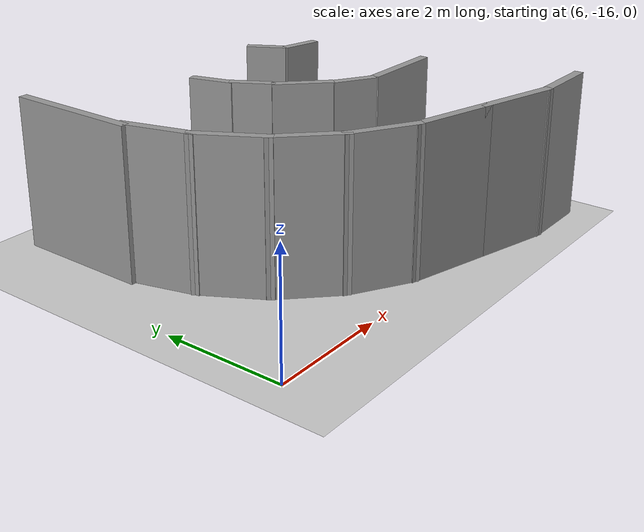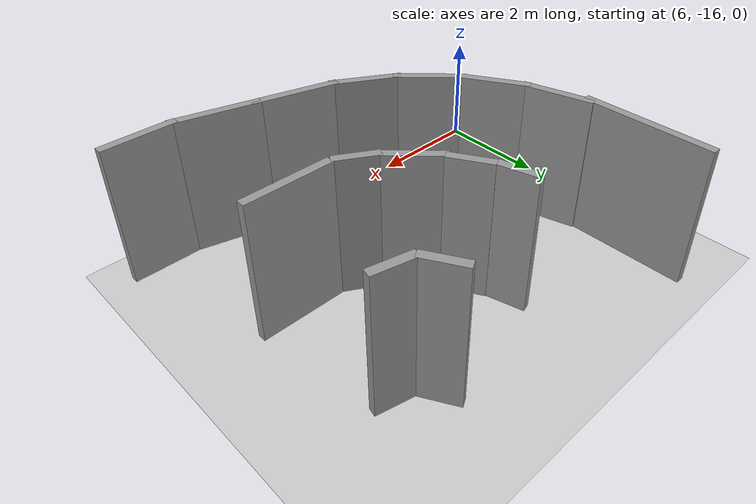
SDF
<sdf version="1.6">
 <world name="default">
  <model name="ground_plane">
   <static>1</static>
   <link name="link">
    <collision name="collision">
     <geometry><plane><normal>0 0 1</normal><size>100 100</size></plane></geometry>
     <surface><friction><ode><mu>100</mu><mu2>50</mu2></ode></friction></surface>
    </collision>
    <visual name="visual">
     <cast_shadows>0</cast_shadows>
     <geometry><plane><normal>0 0 1</normal><size>100 100</size></plane></geometry>
     <material>
      <script><uri>file://media/materials/scripts/gazebo.material</uri><name>Gazebo/Grey</name></script>
     </material>
    </visual>
   </link>
  </model>
  <model name="c-Snail_v3">
   <link name="Wall_21">
    <pose>5.25228 -5.75509 0 0 -0 0</pose>
    <visual name="Wall_21_Visual">
     <pose>0 0 1.25 0 -0 0</pose>
     <geometry><box><size>2.25 0.15 2.5</size></box></geometry>
     <material>
      <script><uri>file://media/materials/scripts/gazebo.material</uri><name>Gazebo/Grey</name></script>
      <ambient>1 1 1 1</ambient>
     </material>
     <meta><layer>0</layer></meta>
    </visual>
    <collision name="Wall_21_Collision">
     <pose>0 0 1.25 0 -0 0</pose>
     <geometry><box><size>2.25 0.15 2.5</size></box></geometry>
     <surface>
      <friction>
       <ode><mu>1</mu><mu2>1</mu2><fdir1>0 0 0</fdir1><slip1>0</slip1><slip2>0</slip2></ode>
       <torsional>
        <coefficient>1</coefficient>
        <patch_radius>0</patch_radius>
        <surface_radius>0</surface_radius>
        <use_patch_radius>1</use_patch_radius>
        <ode><slip>0</slip></ode>
       </torsional>
      </friction>
      <bounce><restitution_coefficient>0</restitution_coefficient><threshold>1e+06</threshold></bounce>
      <contact>
       <collide_without_contact>0</collide_without_contact>
       <collide_without_contact_bitmask>1</collide_without_contact_bitmask>
       <collide_bitmask>1</collide_bitmask>
       <ode>
        <soft_cfm>0</soft_cfm>
        <soft_erp>0.2</soft_erp>
        <kp>1e+13</kp>
        <kd>1</kd>
        <max_vel>0.01</max_vel>
        <min_depth>0</min_depth>
       </ode>
       <bullet>
        <split_impulse>1</split_impulse>
        <split_impulse_penetration_threshold>-0.01</split_impulse_penetration_threshold>
        <soft_cfm>0</soft_cfm>
        <soft_erp>0.2</soft_erp>
        <kp>1e+13</kp>
        <kd>1</kd>
       </bullet>
      </contact>
     </surface>
    </collision>
   </link>
   <link name="Wall_22">
    <pose>6.78859 -5.56286 0 0 -0 0.261799</pose>
    <visual name="Wall_22_Visual">
     <pose>0 0 1.25 0 -0 0</pose>
     <geometry><box><size>1.25 0.15 2.5</size></box></geometry>
     <material>
      <script><uri>file://media/materials/scripts/gazebo.material</uri><name>Gazebo/Grey</name></script>
      <ambient>1 1 1 1</ambient>
     </material>
     <meta><layer>0</layer></meta>
    </visual>
    <collision name="Wall_22_Collision">
     <pose>0 0 1.25 0 -0 0</pose>
     <geometry><box><size>1.25 0.15 2.5</size></box></geometry>
     <surface>
      <friction>
       <ode><mu>1</mu><mu2>1</mu2><fdir1>0 0 0</fdir1><slip1>0</slip1><slip2>0</slip2></ode>
       <torsional>
        <coefficient>1</coefficient>
        <patch_radius>0</patch_radius>
        <surface_radius>0</surface_radius>
        <use_patch_radius>1</use_patch_radius>
        <ode><slip>0</slip></ode>
       </torsional>
      </friction>
      <bounce><restitution_coefficient>0</restitution_coefficient><threshold>1e+06</threshold></bounce>
      <contact>
       <collide_without_contact>0</collide_without_contact>
       <collide_without_contact_bitmask>1</collide_without_contact_bitmask>
       <collide_bitmask>1</collide_bitmask>
       <ode>
        <soft_cfm>0</soft_cfm>
        <soft_erp>0.2</soft_erp>
        <kp>1e+13</kp>
        <kd>1</kd>
        <max_vel>0.01</max_vel>
        <min_depth>0</min_depth>
       </ode>
       <bullet>
        <split_impulse>1</split_impulse>
        <split_impulse_penetration_threshold>-0.01</split_impulse_penetration_threshold>
        <soft_cfm>0</soft_cfm>
        <soft_erp>0.2</soft_erp>
        <kp>1e+13</kp>
        <kd>1</kd>
       </bullet>
      </contact>
     </surface>
    </collision>
   </link>
   <link name="Wall_23">
    <pose>7.79617 -5.14551 0 0 -0 0.523599</pose>
    <visual name="Wall_23_Visual">
     <pose>0 0 1.25 0 -0 0</pose>
     <geometry><box><size>1.25 0.15 2.5</size></box></geometry>
     <material>
      <script><uri>file://media/materials/scripts/gazebo.material</uri><name>Gazebo/Grey</name></script>
      <ambient>1 1 1 1</ambient>
     </material>
     <meta><layer>0</layer></meta>
    </visual>
    <collision name="Wall_23_Collision">
     <pose>0 0 1.25 0 -0 0</pose>
     <geometry><box><size>1.25 0.15 2.5</size></box></geometry>
     <surface>
      <friction>
       <ode><mu>1</mu><mu2>1</mu2><fdir1>0 0 0</fdir1><slip1>0</slip1><slip2>0</slip2></ode>
       <torsional>
        <coefficient>1</coefficient>
        <patch_radius>0</patch_radius>
        <surface_radius>0</surface_radius>
        <use_patch_radius>1</use_patch_radius>
        <ode><slip>0</slip></ode>
       </torsional>
      </friction>
      <bounce><restitution_coefficient>0</restitution_coefficient><threshold>1e+06</threshold></bounce>
      <contact>
       <collide_without_contact>0</collide_without_contact>
       <collide_without_contact_bitmask>1</collide_without_contact_bitmask>
       <collide_bitmask>1</collide_bitmask>
       <ode>
        <soft_cfm>0</soft_cfm>
        <soft_erp>0.2</soft_erp>
        <kp>1e+13</kp>
        <kd>1</kd>
        <max_vel>0.01</max_vel>
        <min_depth>0</min_depth>
       </ode>
       <bullet>
        <split_impulse>1</split_impulse>
        <split_impulse_penetration_threshold>-0.01</split_impulse_penetration_threshold>
        <soft_cfm>0</soft_cfm>
        <soft_erp>0.2</soft_erp>
        <kp>1e+13</kp>
        <kd>1</kd>
       </bullet>
      </contact>
     </surface>
    </collision>
   </link>
   <link name="Wall_24">
    <pose>8.66139 -4.4816 0 0 -0 0.785398</pose>
    <visual name="Wall_24_Visual">
     <pose>0 0 1.25 0 -0 0</pose>
     <geometry><box><size>1.25 0.15 2.5</size></box></geometry>
     <material>
      <script><uri>file://media/materials/scripts/gazebo.material</uri><name>Gazebo/Grey</name></script>
      <ambient>1 1 1 1</ambient>
     </material>
     <meta><layer>0</layer></meta>
    </visual>
    <collision name="Wall_24_Collision">
     <pose>0 0 1.25 0 -0 0</pose>
     <geometry><box><size>1.25 0.15 2.5</size></box></geometry>
     <surface>
      <friction>
       <ode><mu>1</mu><mu2>1</mu2><fdir1>0 0 0</fdir1><slip1>0</slip1><slip2>0</slip2></ode>
       <torsional>
        <coefficient>1</coefficient>
        <patch_radius>0</patch_radius>
        <surface_radius>0</surface_radius>
        <use_patch_radius>1</use_patch_radius>
        <ode><slip>0</slip></ode>
       </torsional>
      </friction>
      <bounce><restitution_coefficient>0</restitution_coefficient><threshold>1e+06</threshold></bounce>
      <contact>
       <collide_without_contact>0</collide_without_contact>
       <collide_without_contact_bitmask>1</collide_without_contact_bitmask>
       <collide_bitmask>1</collide_bitmask>
       <ode>
        <soft_cfm>0</soft_cfm>
        <soft_erp>0.2</soft_erp>
        <kp>1e+13</kp>
        <kd>1</kd>
        <max_vel>0.01</max_vel>
        <min_depth>0</min_depth>
       </ode>
       <bullet>
        <split_impulse>1</split_impulse>
        <split_impulse_penetration_threshold>-0.01</split_impulse_penetration_threshold>
        <soft_cfm>0</soft_cfm>
        <soft_erp>0.2</soft_erp>
        <kp>1e+13</kp>
        <kd>1</kd>
       </bullet>
      </contact>
     </surface>
    </collision>
   </link>
   <link name="Wall_25">
    <pose>9.3253 -3.61638 0 0 -0 1.0472</pose>
    <visual name="Wall_25_Visual">
     <pose>0 0 1.25 0 -0 0</pose>
     <geometry><box><size>1.25 0.15 2.5</size></box></geometry>
     <material>
      <script><uri>file://media/materials/scripts/gazebo.material</uri><name>Gazebo/Grey</name></script>
      <ambient>1 1 1 1</ambient>
     </material>
     <meta><layer>0</layer></meta>
    </visual>
    <collision name="Wall_25_Collision">
     <pose>0 0 1.25 0 -0 0</pose>
     <geometry><box><size>1.25 0.15 2.5</size></box></geometry>
     <surface>
      <friction>
       <ode><mu>1</mu><mu2>1</mu2><fdir1>0 0 0</fdir1><slip1>0</slip1><slip2>0</slip2></ode>
       <torsional>
        <coefficient>1</coefficient>
        <patch_radius>0</patch_radius>
        <surface_radius>0</surface_radius>
        <use_patch_radius>1</use_patch_radius>
        <ode><slip>0</slip></ode>
       </torsional>
      </friction>
      <bounce><restitution_coefficient>0</restitution_coefficient><threshold>1e+06</threshold></bounce>
      <contact>
       <collide_without_contact>0</collide_without_contact>
       <collide_without_contact_bitmask>1</collide_without_contact_bitmask>
       <collide_bitmask>1</collide_bitmask>
       <ode>
        <soft_cfm>0</soft_cfm>
        <soft_erp>0.2</soft_erp>
        <kp>1e+13</kp>
        <kd>1</kd>
        <max_vel>0.01</max_vel>
        <min_depth>0</min_depth>
       </ode>
       <bullet>
        <split_impulse>1</split_impulse>
        <split_impulse_penetration_threshold>-0.01</split_impulse_penetration_threshold>
        <soft_cfm>0</soft_cfm>
        <soft_erp>0.2</soft_erp>
        <kp>1e+13</kp>
        <kd>1</kd>
       </bullet>
      </contact>
     </surface>
    </collision>
   </link>
   <link name="Wall_26">
    <pose>9.775 -2.48806 0 0 -0 1.309</pose>
    <visual name="Wall_26_Visual">
     <pose>0 0 1.25 0 -0 0</pose>
     <geometry><box><size>1.5 0.15 2.5</size></box></geometry>
     <material>
      <script><uri>file://media/materials/scripts/gazebo.material</uri><name>Gazebo/Grey</name></script>
      <ambient>1 1 1 1</ambient>
     </material>
     <meta><layer>0</layer></meta>
    </visual>
    <collision name="Wall_26_Collision">
     <pose>0 0 1.25 0 -0 0</pose>
     <geometry><box><size>1.5 0.15 2.5</size></box></geometry>
     <surface>
      <friction>
       <ode><mu>1</mu><mu2>1</mu2><fdir1>0 0 0</fdir1><slip1>0</slip1><slip2>0</slip2></ode>
       <torsional>
        <coefficient>1</coefficient>
        <patch_radius>0</patch_radius>
        <surface_radius>0</surface_radius>
        <use_patch_radius>1</use_patch_radius>
        <ode><slip>0</slip></ode>
       </torsional>
      </friction>
      <bounce><restitution_coefficient>0</restitution_coefficient><threshold>1e+06</threshold></bounce>
      <contact>
       <collide_without_contact>0</collide_without_contact>
       <collide_without_contact_bitmask>1</collide_without_contact_bitmask>
       <collide_bitmask>1</collide_bitmask>
       <ode>
        <soft_cfm>0</soft_cfm>
        <soft_erp>0.2</soft_erp>
        <kp>1e+13</kp>
        <kd>1</kd>
        <max_vel>0.01</max_vel>
        <min_depth>0</min_depth>
       </ode>
       <bullet>
        <split_impulse>1</split_impulse>
        <split_impulse_penetration_threshold>-0.01</split_impulse_penetration_threshold>
        <soft_cfm>0</soft_cfm>
        <soft_erp>0.2</soft_erp>
        <kp>1e+13</kp>
        <kd>1</kd>
       </bullet>
      </contact>
     </surface>
    </collision>
   </link>
   <link name="Wall_27">
    <pose>10.1244 -1.18406 0 0 -0 1.309</pose>
    <visual name="Wall_27_Visual">
     <pose>0 0 1.25 0 -0 0</pose>
     <geometry><box><size>1.5 0.15 2.5</size></box></geometry>
     <material>
      <script><uri>file://media/materials/scripts/gazebo.material</uri><name>Gazebo/Grey</name></script>
      <ambient>1 1 1 1</ambient>
     </material>
     <meta><layer>0</layer></meta>
    </visual>
    <collision name="Wall_27_Collision">
     <pose>0 0 1.25 0 -0 0</pose>
     <geometry><box><size>1.5 0.15 2.5</size></box></geometry>
     <surface>
      <friction>
       <ode><mu>1</mu><mu2>1</mu2><fdir1>0 0 0</fdir1><slip1>0</slip1><slip2>0</slip2></ode>
       <torsional>
        <coefficient>1</coefficient>
        <patch_radius>0</patch_radius>
        <surface_radius>0</surface_radius>
        <use_patch_radius>1</use_patch_radius>
        <ode><slip>0</slip></ode>
       </torsional>
      </friction>
      <bounce><restitution_coefficient>0</restitution_coefficient><threshold>1e+06</threshold></bounce>
      <contact>
       <collide_without_contact>0</collide_without_contact>
       <collide_without_contact_bitmask>1</collide_without_contact_bitmask>
       <collide_bitmask>1</collide_bitmask>
       <ode>
        <soft_cfm>0</soft_cfm>
        <soft_erp>0.2</soft_erp>
        <kp>1e+13</kp>
        <kd>1</kd>
        <max_vel>0.01</max_vel>
        <min_depth>0</min_depth>
       </ode>
       <bullet>
        <split_impulse>1</split_impulse>
        <split_impulse_penetration_threshold>-0.01</split_impulse_penetration_threshold>
        <soft_cfm>0</soft_cfm>
        <soft_erp>0.2</soft_erp>
        <kp>1e+13</kp>
        <kd>1</kd>
       </bullet>
      </contact>
     </surface>
    </collision>
   </link>
   <link name="Wall_28">
    <pose>10.2991 0.017937 0 0 -0 1.5708</pose>
    <visual name="Wall_28_Visual">
     <pose>0 0 1.25 0 -0 0</pose>
     <geometry><box><size>1.25 0.15 2.5</size></box></geometry>
     <material>
      <script><uri>file://media/materials/scripts/gazebo.material</uri><name>Gazebo/Grey</name></script>
      <ambient>1 1 1 1</ambient>
     </material>
     <meta><layer>0</layer></meta>
    </visual>
    <collision name="Wall_28_Collision">
     <pose>0 0 1.25 0 -0 0</pose>
     <geometry><box><size>1.25 0.15 2.5</size></box></geometry>
     <surface>
      <friction>
       <ode><mu>1</mu><mu2>1</mu2><fdir1>0 0 0</fdir1><slip1>0</slip1><slip2>0</slip2></ode>
       <torsional>
        <coefficient>1</coefficient>
        <patch_radius>0</patch_radius>
        <surface_radius>0</surface_radius>
        <use_patch_radius>1</use_patch_radius>
        <ode><slip>0</slip></ode>
       </torsional>
      </friction>
      <bounce><restitution_coefficient>0</restitution_coefficient><threshold>1e+06</threshold></bounce>
      <contact>
       <collide_without_contact>0</collide_without_contact>
       <collide_without_contact_bitmask>1</collide_without_contact_bitmask>
       <collide_bitmask>1</collide_bitmask>
       <ode>
        <soft_cfm>0</soft_cfm>
        <soft_erp>0.2</soft_erp>
        <kp>1e+13</kp>
        <kd>1</kd>
        <max_vel>0.01</max_vel>
        <min_depth>0</min_depth>
       </ode>
       <bullet>
        <split_impulse>1</split_impulse>
        <split_impulse_penetration_threshold>-0.01</split_impulse_penetration_threshold>
        <soft_cfm>0</soft_cfm>
        <soft_erp>0.2</soft_erp>
        <kp>1e+13</kp>
        <kd>1</kd>
       </bullet>
      </contact>
     </surface>
    </collision>
   </link>
   <link name="Wall_50">
    <pose>5.83118 -3.35199 0 0 -0 0.261799</pose>
    <visual name="Wall_50_Visual">
     <pose>0 0 1.25 0 -0 0</pose>
     <geometry><box><size>0.75 0.15 2.5</size></box></geometry>
     <material>
      <script><uri>file://media/materials/scripts/gazebo.material</uri><name>Gazebo/Grey</name></script>
      <ambient>1 1 1 1</ambient>
     </material>
     <meta><layer>0</layer></meta>
    </visual>
    <collision name="Wall_50_Collision">
     <pose>0 0 1.25 0 -0 0</pose>
     <geometry><box><size>0.75 0.15 2.5</size></box></geometry>
     <surface>
      <friction>
       <ode><mu>1</mu><mu2>1</mu2><fdir1>0 0 0</fdir1><slip1>0</slip1><slip2>0</slip2></ode>
       <torsional>
        <coefficient>1</coefficient>
        <patch_radius>0</patch_radius>
        <surface_radius>0</surface_radius>
        <use_patch_radius>1</use_patch_radius>
        <ode><slip>0</slip></ode>
       </torsional>
      </friction>
      <bounce><restitution_coefficient>0</restitution_coefficient><threshold>1e+06</threshold></bounce>
      <contact>
       <collide_without_contact>0</collide_without_contact>
       <collide_without_contact_bitmask>1</collide_without_contact_bitmask>
       <collide_bitmask>1</collide_bitmask>
       <ode>
        <soft_cfm>0</soft_cfm>
        <soft_erp>0.2</soft_erp>
        <kp>1e+13</kp>
        <kd>1</kd>
        <max_vel>0.01</max_vel>
        <min_depth>0</min_depth>
       </ode>
       <bullet>
        <split_impulse>1</split_impulse>
        <split_impulse_penetration_threshold>-0.01</split_impulse_penetration_threshold>
        <soft_cfm>0</soft_cfm>
        <soft_erp>0.2</soft_erp>
        <kp>1e+13</kp>
        <kd>1</kd>
       </bullet>
      </contact>
     </surface>
    </collision>
   </link>
   <link name="Wall_51">
    <pose>6.44534 -3.07335 0 0 -0 0.523599</pose>
    <visual name="Wall_51_Visual">
     <pose>0 0 1.25 0 -0 0</pose>
     <geometry><box><size>0.75 0.15 2.5</size></box></geometry>
     <material>
      <script><uri>file://media/materials/scripts/gazebo.material</uri><name>Gazebo/Grey</name></script>
      <ambient>1 1 1 1</ambient>
     </material>
     <meta><layer>0</layer></meta>
    </visual>
    <collision name="Wall_51_Collision">
     <pose>0 0 1.25 0 -0 0</pose>
     <geometry><box><size>0.75 0.15 2.5</size></box></geometry>
     <surface>
      <friction>
       <ode><mu>1</mu><mu2>1</mu2><fdir1>0 0 0</fdir1><slip1>0</slip1><slip2>0</slip2></ode>
       <torsional>
        <coefficient>1</coefficient>
        <patch_radius>0</patch_radius>
        <surface_radius>0</surface_radius>
        <use_patch_radius>1</use_patch_radius>
        <ode><slip>0</slip></ode>
       </torsional>
      </friction>
      <bounce><restitution_coefficient>0</restitution_coefficient><threshold>1e+06</threshold></bounce>
      <contact>
       <collide_without_contact>0</collide_without_contact>
       <collide_without_contact_bitmask>1</collide_without_contact_bitmask>
       <collide_bitmask>1</collide_bitmask>
       <ode>
        <soft_cfm>0</soft_cfm>
        <soft_erp>0.2</soft_erp>
        <kp>1e+13</kp>
        <kd>1</kd>
        <max_vel>0.01</max_vel>
        <min_depth>0</min_depth>
       </ode>
       <bullet>
        <split_impulse>1</split_impulse>
        <split_impulse_penetration_threshold>-0.01</split_impulse_penetration_threshold>
        <soft_cfm>0</soft_cfm>
        <soft_erp>0.2</soft_erp>
        <kp>1e+13</kp>
        <kd>1</kd>
       </bullet>
      </contact>
     </surface>
    </collision>
   </link>
   <link name="Wall_52">
    <pose>7.08455 -2.59483 0 0 -0 0.785398</pose>
    <visual name="Wall_52_Visual">
     <pose>0 0 1.25 0 -0 0</pose>
     <geometry><box><size>1 0.15 2.5</size></box></geometry>
     <material>
      <script><uri>file://media/materials/scripts/gazebo.material</uri><name>Gazebo/Grey</name></script>
      <ambient>1 1 1 1</ambient>
     </material>
     <meta><layer>0</layer></meta>
    </visual>
    <collision name="Wall_52_Collision">
     <pose>0 0 1.25 0 -0 0</pose>
     <geometry><box><size>1 0.15 2.5</size></box></geometry>
     <surface>
      <friction>
       <ode><mu>1</mu><mu2>1</mu2><fdir1>0 0 0</fdir1><slip1>0</slip1><slip2>0</slip2></ode>
       <torsional>
        <coefficient>1</coefficient>
        <patch_radius>0</patch_radius>
        <surface_radius>0</surface_radius>
        <use_patch_radius>1</use_patch_radius>
        <ode><slip>0</slip></ode>
       </torsional>
      </friction>
      <bounce><restitution_coefficient>0</restitution_coefficient><threshold>1e+06</threshold></bounce>
      <contact>
       <collide_without_contact>0</collide_without_contact>
       <collide_without_contact_bitmask>1</collide_without_contact_bitmask>
       <collide_bitmask>1</collide_bitmask>
       <ode>
        <soft_cfm>0</soft_cfm>
        <soft_erp>0.2</soft_erp>
        <kp>1e+13</kp>
        <kd>1</kd>
        <max_vel>0.01</max_vel>
        <min_depth>0</min_depth>
       </ode>
       <bullet>
        <split_impulse>1</split_impulse>
        <split_impulse_penetration_threshold>-0.01</split_impulse_penetration_threshold>
        <soft_cfm>0</soft_cfm>
        <soft_erp>0.2</soft_erp>
        <kp>1e+13</kp>
        <kd>1</kd>
       </bullet>
      </contact>
     </surface>
    </collision>
   </link>
   <link name="Wall_53">
    <pose>7.62419 -1.95298 0 0 -0 1.0472</pose>
    <visual name="Wall_53_Visual">
     <pose>0 0 1.25 0 -0 0</pose>
     <geometry><box><size>0.75 0.15 2.5</size></box></geometry>
     <material>
      <script><uri>file://media/materials/scripts/gazebo.material</uri><name>Gazebo/Grey</name></script>
      <ambient>1 1 1 1</ambient>
     </material>
     <meta><layer>0</layer></meta>
    </visual>
    <collision name="Wall_53_Collision">
     <pose>0 0 1.25 0 -0 0</pose>
     <geometry><box><size>0.75 0.15 2.5</size></box></geometry>
     <surface>
      <friction>
       <ode><mu>1</mu><mu2>1</mu2><fdir1>0 0 0</fdir1><slip1>0</slip1><slip2>0</slip2></ode>
       <torsional>
        <coefficient>1</coefficient>
        <patch_radius>0</patch_radius>
        <surface_radius>0</surface_radius>
        <use_patch_radius>1</use_patch_radius>
        <ode><slip>0</slip></ode>
       </torsional>
      </friction>
      <bounce><restitution_coefficient>0</restitution_coefficient><threshold>1e+06</threshold></bounce>
      <contact>
       <collide_without_contact>0</collide_without_contact>
       <collide_without_contact_bitmask>1</collide_without_contact_bitmask>
       <collide_bitmask>1</collide_bitmask>
       <ode>
        <soft_cfm>0</soft_cfm>
        <soft_erp>0.2</soft_erp>
        <kp>1e+13</kp>
        <kd>1</kd>
        <max_vel>0.01</max_vel>
        <min_depth>0</min_depth>
       </ode>
       <bullet>
        <split_impulse>1</split_impulse>
        <split_impulse_penetration_threshold>-0.01</split_impulse_penetration_threshold>
        <soft_cfm>0</soft_cfm>
        <soft_erp>0.2</soft_erp>
        <kp>1e+13</kp>
        <kd>1</kd>
       </bullet>
      </contact>
     </surface>
    </collision>
   </link>
   <link name="Wall_54">
    <pose>7.79615 -0.874793 0 0 -0 1.5708</pose>
    <visual name="Wall_54_Visual">
     <pose>0 0 1.25 0 -0 0</pose>
     <geometry><box><size>1.5 0.15 2.5</size></box></geometry>
     <material>
      <script><uri>file://media/materials/scripts/gazebo.material</uri><name>Gazebo/Grey</name></script>
      <ambient>1 1 1 1</ambient>
     </material>
     <meta><layer>0</layer></meta>
    </visual>
    <collision name="Wall_54_Collision">
     <pose>0 0 1.25 0 -0 0</pose>
     <geometry><box><size>1.5 0.15 2.5</size></box></geometry>
     <surface>
      <friction>
       <ode><mu>1</mu><mu2>1</mu2><fdir1>0 0 0</fdir1><slip1>0</slip1><slip2>0</slip2></ode>
       <torsional>
        <coefficient>1</coefficient>
        <patch_radius>0</patch_radius>
        <surface_radius>0</surface_radius>
        <use_patch_radius>1</use_patch_radius>
        <ode><slip>0</slip></ode>
       </torsional>
      </friction>
      <bounce><restitution_coefficient>0</restitution_coefficient><threshold>1e+06</threshold></bounce>
      <contact>
       <collide_without_contact>0</collide_without_contact>
       <collide_without_contact_bitmask>1</collide_without_contact_bitmask>
       <collide_bitmask>1</collide_bitmask>
       <ode>
        <soft_cfm>0</soft_cfm>
        <soft_erp>0.2</soft_erp>
        <kp>1e+13</kp>
        <kd>1</kd>
        <max_vel>0.01</max_vel>
        <min_depth>0</min_depth>
       </ode>
       <bullet>
        <split_impulse>1</split_impulse>
        <split_impulse_penetration_threshold>-0.01</split_impulse_penetration_threshold>
        <soft_cfm>0</soft_cfm>
        <soft_erp>0.2</soft_erp>
        <kp>1e+13</kp>
        <kd>1</kd>
       </bullet>
      </contact>
     </surface>
    </collision>
   </link>
   <link name="Wall_73">
    <pose>5.22018 -1.25259 0 0 -0 0.514025</pose>
    <visual name="Wall_73_Visual">
     <pose>0 0 1.25 0 -0 0</pose>
     <geometry><box><size>0.701928 0.15 2.5</size></box></geometry>
     <material>
      <script><uri>file://media/materials/scripts/gazebo.material</uri><name>Gazebo/Grey</name></script>
      <ambient>1 1 1 1</ambient>
     </material>
     <meta><layer>0</layer></meta>
    </visual>
    <collision name="Wall_73_Collision">
     <pose>0 0 1.25 0 -0 0</pose>
     <geometry><box><size>0.701928 0.15 2.5</size></box></geometry>
     <surface>
      <friction>
       <ode><mu>1</mu><mu2>1</mu2><fdir1>0 0 0</fdir1><slip1>0</slip1><slip2>0</slip2></ode>
       <torsional>
        <coefficient>1</coefficient>
        <patch_radius>0</patch_radius>
        <surface_radius>0</surface_radius>
        <use_patch_radius>1</use_patch_radius>
        <ode><slip>0</slip></ode>
       </torsional>
      </friction>
      <bounce><restitution_coefficient>0</restitution_coefficient><threshold>1e+06</threshold></bounce>
      <contact>
       <collide_without_contact>0</collide_without_contact>
       <collide_without_contact_bitmask>1</collide_without_contact_bitmask>
       <collide_bitmask>1</collide_bitmask>
       <ode>
        <soft_cfm>0</soft_cfm>
        <soft_erp>0.2</soft_erp>
        <kp>1e+13</kp>
        <kd>1</kd>
        <max_vel>0.01</max_vel>
        <min_depth>0</min_depth>
       </ode>
       <bullet>
        <split_impulse>1</split_impulse>
        <split_impulse_penetration_threshold>-0.01</split_impulse_penetration_threshold>
        <soft_cfm>0</soft_cfm>
        <soft_erp>0.2</soft_erp>
        <kp>1e+13</kp>
        <kd>1</kd>
       </bullet>
      </contact>
     </surface>
    </collision>
   </link>
   <link name="Wall_73_clone">
    <pose>5.59262 -0.765538 0 0 0 -1.79294</pose>
    <visual name="Wall_73_Visual">
     <pose>0 0 1.25 0 -0 0</pose>
     <geometry><box><size>0.701928 0.15 2.5</size></box></geometry>
     <material>
      <script><uri>file://media/materials/scripts/gazebo.material</uri><name>Gazebo/Grey</name></script>
      <ambient>1 1 1 1</ambient>
      <shader type="pixel"/>
     </material>
     <meta><layer>0</layer></meta>
    </visual>
    <collision name="Wall_73_Collision">
     <pose>0 0 1.25 0 -0 0</pose>
     <geometry><box><size>0.701928 0.15 2.5</size></box></geometry>
     <surface>
      <friction>
       <ode><mu>1</mu><mu2>1</mu2><fdir1>0 0 0</fdir1><slip1>0</slip1><slip2>0</slip2></ode>
       <torsional>
        <coefficient>1</coefficient>
        <patch_radius>0</patch_radius>
        <surface_radius>0</surface_radius>
        <use_patch_radius>1</use_patch_radius>
        <ode><slip>0</slip></ode>
       </torsional>
      </friction>
      <bounce><restitution_coefficient>0</restitution_coefficient><threshold>1e+06</threshold></bounce>
      <contact>
       <collide_without_contact>0</collide_without_contact>
       <collide_without_contact_bitmask>1</collide_without_contact_bitmask>
       <collide_bitmask>1</collide_bitmask>
       <ode>
        <soft_cfm>0</soft_cfm>
        <soft_erp>0.2</soft_erp>
        <kp>1e+13</kp>
        <kd>1</kd>
        <max_vel>0.01</max_vel>
        <min_depth>0</min_depth>
       </ode>
       <bullet>
        <split_impulse>1</split_impulse>
        <split_impulse_penetration_threshold>-0.01</split_impulse_penetration_threshold>
        <soft_cfm>0</soft_cfm>
        <soft_erp>0.2</soft_erp>
        <kp>1e+13</kp>
        <kd>1</kd>
       </bullet>
      </contact>
     </surface>
    </collision>
   </link>
   <static>1</static>
   <pose>12.5718 -6.1346 0 0 0 -1.57044</pose>
  </model>
 </world>
</sdf>
